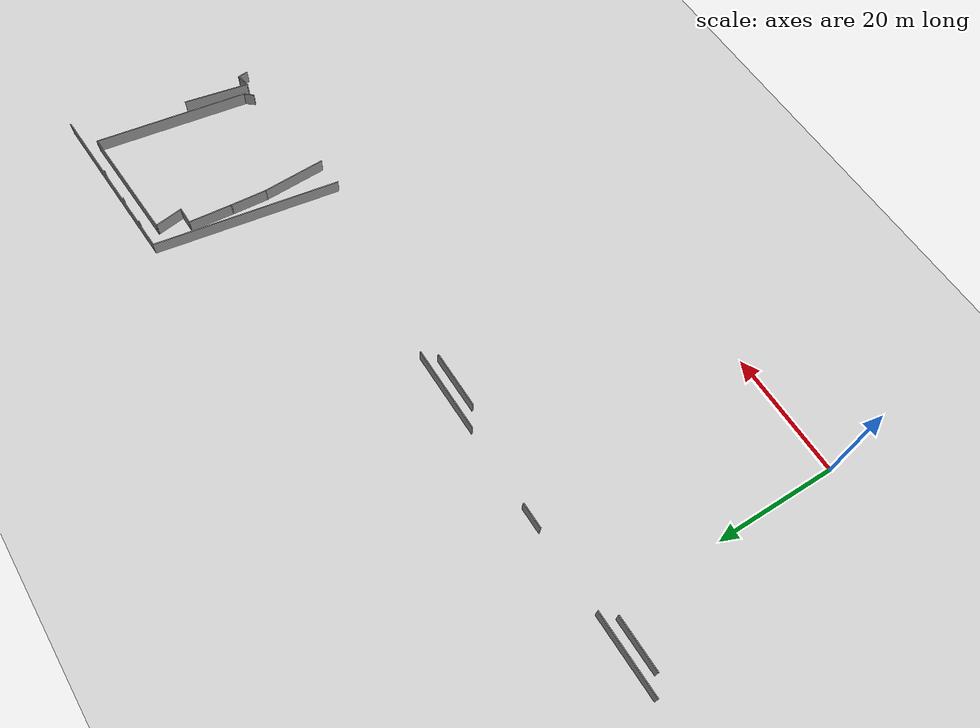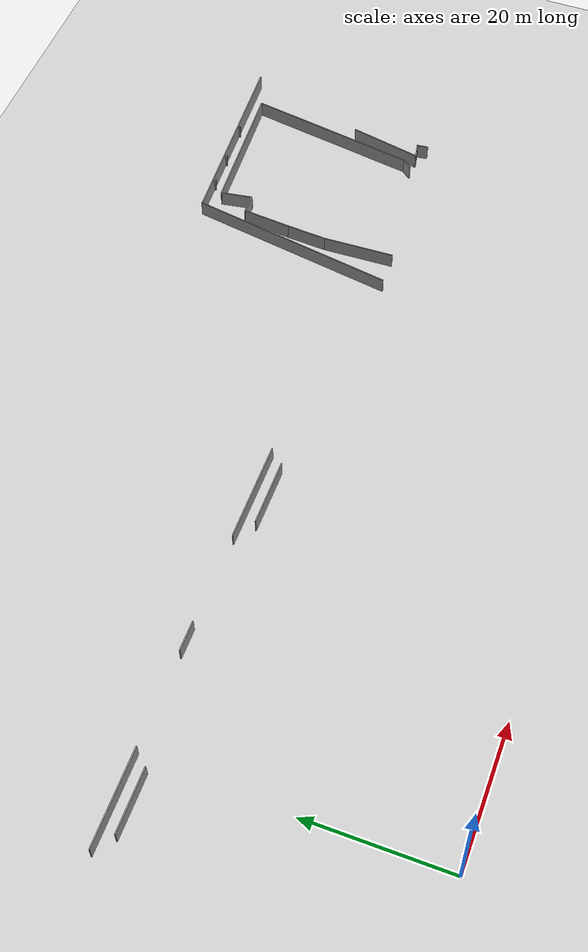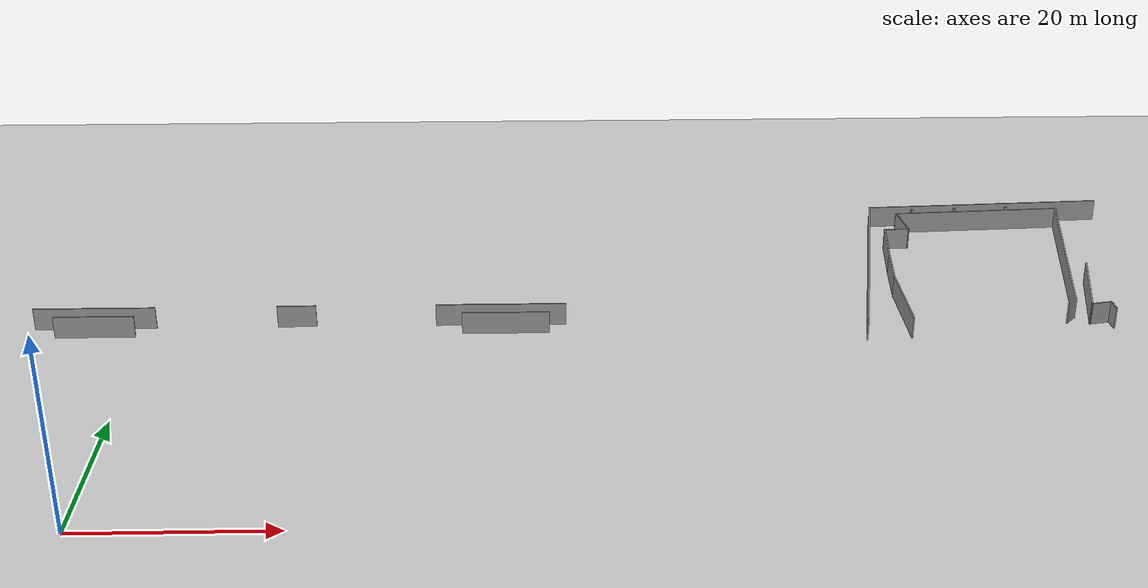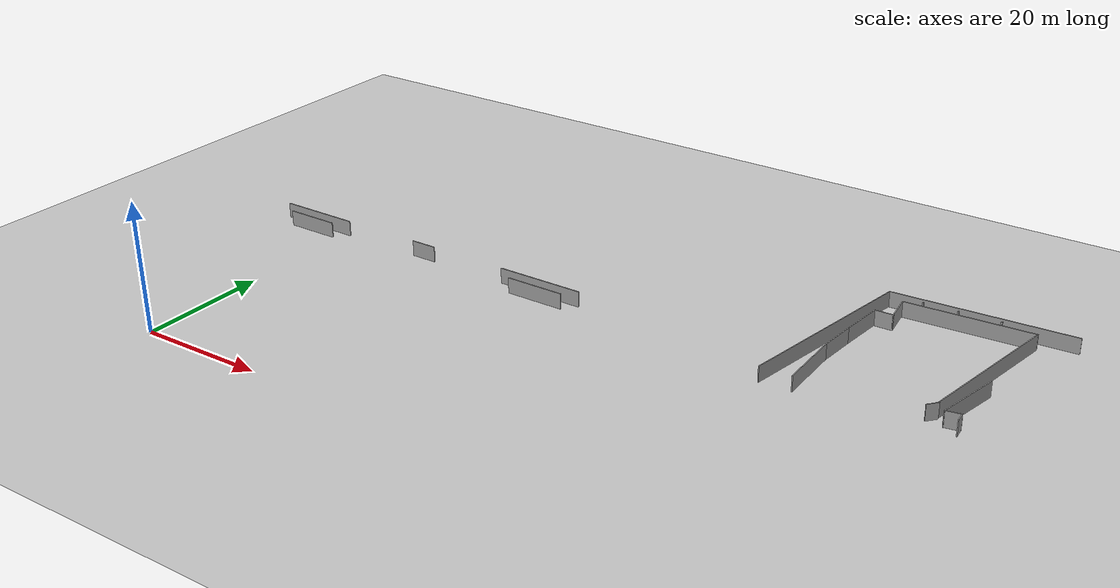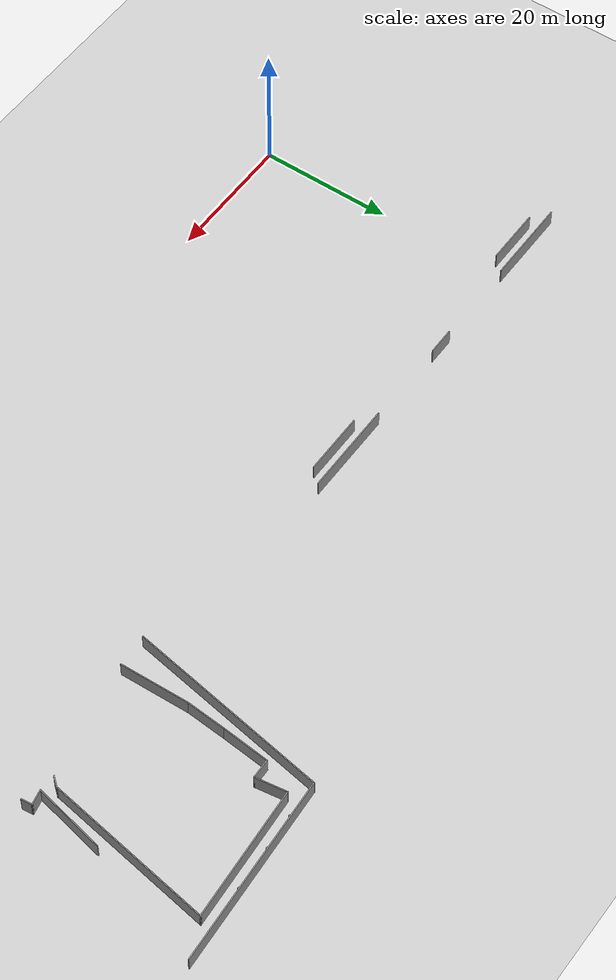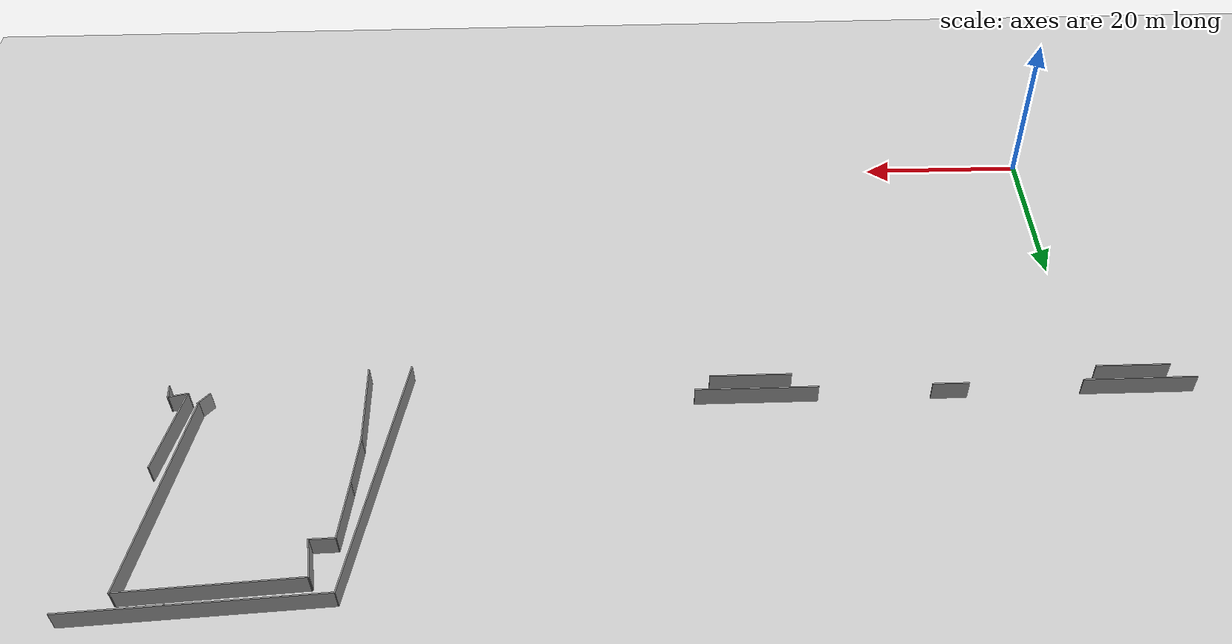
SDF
<sdf version="1.6">
 <world name="default">
  <model name="ground_plane">
   <static>1</static>
   <link name="link">
    <collision name="collision">
     <geometry><plane><normal>0 0 1</normal><size>100 100</size></plane></geometry>
     <surface><friction><ode><mu>100</mu><mu2>50</mu2></ode></friction></surface>
    </collision>
    <visual name="visual">
     <cast_shadows>0</cast_shadows>
     <geometry><plane><normal>0 0 1</normal><size>100 100</size></plane></geometry>
     <material>
      <script><uri>file://media/materials/scripts/gazebo.material</uri><name>Gazebo/Grey</name></script>
     </material>
    </visual>
   </link>
  </model>
  <model name="CMU">
   <pose>62.2844 43.535 0 0 -0 0</pose>
   <link name="Wall_128">
    <collision name="Wall_128_Collision">
     <geometry><box><size>1.70985 0.15 2.5</size></box></geometry>
     <pose>0 0 1.25 0 -0 0</pose>
    </collision>
    <visual name="Wall_128_Visual">
     <pose>0 0 1.25 0 -0 0</pose>
     <geometry><box><size>1.70985 0.15 2.5</size></box></geometry>
     <material>
      <script><uri>file://media/materials/scripts/gazebo.material</uri><name>Gazebo/Grey</name></script>
      <ambient>1 1 1 1</ambient>
     </material>
    </visual>
    <pose>43.1701 -4.77822 0 0 -0 1.67388</pose>
   </link>
   <link name="Wall_129">
    <collision name="Wall_129_Collision">
     <geometry><box><size>2.38497 0.15 2.5</size></box></geometry>
     <pose>0 0 1.25 0 -0 0</pose>
    </collision>
    <visual name="Wall_129_Visual">
     <pose>0 0 1.25 0 -0 0</pose>
     <geometry><box><size>2.38497 0.15 2.5</size></box></geometry>
     <material>
      <script><uri>file://media/materials/scripts/gazebo.material</uri><name>Gazebo/Grey</name></script>
      <ambient>1 1 1 1</ambient>
     </material>
    </visual>
    <pose>41.993 -4.21645 0 0 0 -2.94889</pose>
   </link>
   <link name="Wall_130">
    <collision name="Wall_130_Collision">
     <geometry><box><size>10.7896 0.15 2.5</size></box></geometry>
     <pose>0 0 1.25 0 -0 0</pose>
    </collision>
    <visual name="Wall_130_Visual">
     <pose>0 0 1.25 0 -0 0</pose>
     <geometry><box><size>10.7896 0.15 2.5</size></box></geometry>
     <material>
      <script><uri>file://media/materials/scripts/gazebo.material</uri><name>Gazebo/Grey</name></script>
      <ambient>1 1 1 1</ambient>
     </material>
    </visual>
    <pose>41.9395 0.786037 0 0 -0 1.3734</pose>
   </link>
   <link name="Wall_14">
    <collision name="Wall_14_Collision">
     <geometry><box><size>13.25 0.15 2.5</size></box></geometry>
     <pose>0 0 1.25 0 -0 0</pose>
    </collision>
    <visual name="Wall_14_Visual">
     <pose>0 0 1.25 0 -0 0</pose>
     <geometry><box><size>13.25 0.15 2.5</size></box></geometry>
     <material>
      <script><uri>file://media/materials/scripts/gazebo.material</uri><name>Gazebo/Grey</name></script>
      <ambient>1 1 1 1</ambient>
     </material>
    </visual>
    <pose>-68.0948 -3.11757 0 0 -0 0</pose>
   </link>
   <link name="Wall_18">
    <collision name="Wall_18_Collision">
     <geometry><box><size>4.25 0.15 2.5</size></box></geometry>
     <pose>0 0 1.25 0 -0 0</pose>
    </collision>
    <visual name="Wall_18_Visual">
     <pose>0 0 1.25 0 -0 0</pose>
     <geometry><box><size>4.25 0.15 2.5</size></box></geometry>
     <material>
      <script><uri>file://media/materials/scripts/gazebo.material</uri><name>Gazebo/Grey</name></script>
      <ambient>1 1 1 1</ambient>
     </material>
    </visual>
    <pose>-46.1448 -3.03078 0 0 -0 0</pose>
   </link>
   <link name="Wall_202">
    <collision name="Wall_202_Collision">
     <geometry><box><size>28.1424 0.15 2.5</size></box></geometry>
     <pose>0 0 1.25 0 -0 0</pose>
    </collision>
    <visual name="Wall_202_Visual">
     <pose>0 0 1.25 0 -0 0</pose>
     <geometry><box><size>28.1424 0.15 2.5</size></box></geometry>
     <material>
      <script><uri>file://media/materials/scripts/gazebo.material</uri><name>Gazebo/Grey</name></script>
      <ambient>1 1 1 1</ambient>
     </material>
    </visual>
    <pose>34.7286 23.3011 0 0 0 -3.08595</pose>
   </link>
   <link name="Wall_203">
    <collision name="Wall_203_Collision">
     <geometry><box><size>30.6473 0.15 2.5</size></box></geometry>
     <pose>0 0 1.25 0 -0 0</pose>
    </collision>
    <visual name="Wall_203_Visual">
     <pose>0 0 1.25 0 -0 0</pose>
     <geometry><box><size>30.6473 0.15 2.5</size></box></geometry>
     <material>
      <script><uri>file://media/materials/scripts/gazebo.material</uri><name>Gazebo/Grey</name></script>
      <ambient>1 1 1 1</ambient>
     </material>
    </visual>
    <pose>18.2604 7.46783 0 0 0 -1.73036</pose>
   </link>
   <link name="Wall_213">
    <collision name="Wall_213_Collision">
     <geometry><box><size>1.90757 0.15 2.5</size></box></geometry>
     <pose>0 0 1.25 0 -0 0</pose>
    </collision>
    <visual name="Wall_213_Visual">
     <pose>0 0 1.25 0 -0 0</pose>
     <geometry><box><size>1.90757 0.15 2.5</size></box></geometry>
     <material>
      <script><uri>file://media/materials/scripts/gazebo.material</uri><name>Gazebo/Grey</name></script>
      <ambient>1 1 1 1</ambient>
     </material>
    </visual>
    <pose>38.9386 -3.62199 0 0 -0 0.870903</pose>
   </link>
   <link name="Wall_214">
    <collision name="Wall_214_Collision">
     <geometry><box><size>25.2189 0.15 2.5</size></box></geometry>
     <pose>0 0 1.25 0 -0 0</pose>
    </collision>
    <visual name="Wall_214_Visual">
     <pose>0 0 1.25 0 -0 0</pose>
     <geometry><box><size>25.2189 0.15 2.5</size></box></geometry>
     <material>
      <script><uri>file://media/materials/scripts/gazebo.material</uri><name>Gazebo/Grey</name></script>
      <ambient>1 1 1 1</ambient>
     </material>
    </visual>
    <pose>41.3798 9.43269 0 0 -0 1.41493</pose>
   </link>
   <link name="Wall_216">
    <collision name="Wall_216_Collision">
     <geometry><box><size>19.9278 0.15 2.5</size></box></geometry>
     <pose>0 0 1.25 0 -0 0</pose>
    </collision>
    <visual name="Wall_216_Visual">
     <pose>0 0 1.25 0 -0 0</pose>
     <geometry><box><size>19.9278 0.15 2.5</size></box></geometry>
     <material>
      <script><uri>file://media/materials/scripts/gazebo.material</uri><name>Gazebo/Grey</name></script>
      <ambient>1 1 1 1</ambient>
     </material>
    </visual>
    <pose>33.455 21.2137 0 0 0 -3.08074</pose>
   </link>
   <link name="Wall_217">
    <collision name="Wall_217_Collision">
     <geometry><box><size>4.80332 0.15 2.5</size></box></geometry>
     <pose>0 0 1.25 0 -0 0</pose>
    </collision>
    <visual name="Wall_217_Visual">
     <pose>0 0 1.25 0 -0 0</pose>
     <geometry><box><size>4.80332 0.15 2.5</size></box></geometry>
     <material>
      <script><uri>file://media/materials/scripts/gazebo.material</uri><name>Gazebo/Grey</name></script>
      <ambient>1 1 1 1</ambient>
     </material>
    </visual>
    <pose>23.9382 18.3127 0 0 0 -1.41815</pose>
   </link>
   <link name="Wall_218">
    <collision name="Wall_218_Collision">
     <geometry><box><size>2.98028 0.15 2.5</size></box></geometry>
     <pose>0 0 1.25 0 -0 0</pose>
    </collision>
    <visual name="Wall_218_Visual">
     <pose>0 0 1.25 0 -0 0</pose>
     <geometry><box><size>2.98028 0.15 2.5</size></box></geometry>
     <material>
      <script><uri>file://media/materials/scripts/gazebo.material</uri><name>Gazebo/Grey</name></script>
      <ambient>1 1 1 1</ambient>
     </material>
    </visual>
    <pose>22.8768 15.9777 0 0 0 -3.1166</pose>
   </link>
   <link name="Wall_219">
    <collision name="Wall_219_Collision">
     <geometry><box><size>7.2543 0.15 2.5</size></box></geometry>
     <pose>0 0 1.25 0 -0 0</pose>
    </collision>
    <visual name="Wall_219_Visual">
     <pose>0 0 1.25 0 -0 0</pose>
     <geometry><box><size>7.2543 0.15 2.5</size></box></geometry>
     <material>
      <script><uri>file://media/materials/scripts/gazebo.material</uri><name>Gazebo/Grey</name></script>
      <ambient>1 1 1 1</ambient>
     </material>
    </visual>
    <pose>21.1432 12.4045 0 0 0 -1.66056</pose>
   </link>
   <link name="Wall_220">
    <collision name="Wall_220_Collision">
     <geometry><box><size>6.03816 0.15 2.5</size></box></geometry>
     <pose>0 0 1.25 0 -0 0</pose>
    </collision>
    <visual name="Wall_220_Visual">
     <pose>0 0 1.25 0 -0 0</pose>
     <geometry><box><size>6.03816 0.15 2.5</size></box></geometry>
     <material>
      <script><uri>file://media/materials/scripts/gazebo.material</uri><name>Gazebo/Grey</name></script>
      <ambient>1 1 1 1</ambient>
     </material>
    </visual>
    <pose>20.6126 5.93022 0 0 0 -1.64296</pose>
   </link>
   <link name="Wall_221">
    <collision name="Wall_221_Collision">
     <geometry><box><size>10.4159 0.15 2.5</size></box></geometry>
     <pose>0 0 1.25 0 -0 0</pose>
    </collision>
    <visual name="Wall_221_Visual">
     <pose>0 0 1.25 0 -0 0</pose>
     <geometry><box><size>10.4159 0.15 2.5</size></box></geometry>
     <material>
      <script><uri>file://media/materials/scripts/gazebo.material</uri><name>Gazebo/Grey</name></script>
      <ambient>1 1 1 1</ambient>
     </material>
    </visual>
    <pose>20.5772 -2.20684 0 0 0 -1.53633</pose>
   </link>
   <link name="Wall_24">
    <collision name="Wall_24_Collision">
     <geometry><box><size>14.25 0.15 2.5</size></box></geometry>
     <pose>0 0 1.25 0 -0 0</pose>
    </collision>
    <visual name="Wall_24_Visual">
     <pose>0 0 1.25 0 -0 0</pose>
     <geometry><box><size>14.25 0.15 2.5</size></box></geometry>
     <material>
      <script><uri>file://media/materials/scripts/gazebo.material</uri><name>Gazebo/Grey</name></script>
      <ambient>1 1 1 1</ambient>
     </material>
    </visual>
    <pose>-23.83 -3.07311 0 0 -0 0</pose>
   </link>
   <link name="Wall_36">
    <collision name="Wall_36_Collision">
     <geometry><box><size>9.5 0.15 2.5</size></box></geometry>
     <pose>0 0 1.25 0 -0 0</pose>
    </collision>
    <visual name="Wall_36_Visual">
     <pose>0 0 1.25 0 -0 0</pose>
     <geometry><box><size>9.5 0.15 2.5</size></box></geometry>
     <material>
      <script><uri>file://media/materials/scripts/gazebo.material</uri><name>Gazebo/Grey</name></script>
      <ambient>1 1 1 1</ambient>
     </material>
    </visual>
    <pose>-23.2682 -5.0798 0 0 -0 0</pose>
   </link>
   <link name="Wall_62">
    <collision name="Wall_62_Collision">
     <geometry><box><size>8.70437 0.15 2.5</size></box></geometry>
     <pose>0 0 1.25 0 -0 0</pose>
    </collision>
    <visual name="Wall_62_Visual">
     <pose>0 0 1.25 0 -0 0</pose>
     <geometry><box><size>8.70437 0.15 2.5</size></box></geometry>
     <material>
      <script><uri>file://media/materials/scripts/gazebo.material</uri><name>Gazebo/Grey</name></script>
      <ambient>1 1 1 1</ambient>
     </material>
    </visual>
    <pose>-67.7521 -5.1311 0 0 -0 0</pose>
   </link>
   <static>1</static>
  </model>
  <model name="unit_box_0_clone_clone_22">
   <pose>99.8641 66.7913 1.07512 5e-06 -1e-06 0.004623</pose>
   <link name="link">
    <inertial>
     <mass>1</mass>
     <inertia>
      <ixx>0.166667</ixx>
      <ixy>0</ixy>
      <ixz>0</ixz>
      <iyy>0.166667</iyy>
      <iyz>0</iyz>
      <izz>0.166667</izz>
     </inertia>
    </inertial>
    <collision name="collision"><geometry><box><size>0.230557 0.245067 2.15023</size></box></geometry></collision>
    <visual name="visual">
     <geometry><box><size>0.230557 0.245067 2.15023</size></box></geometry>
     <material>
      <script><name>Gazebo/Grey</name><uri>file://media/materials/scripts/gazebo.material</uri></script>
     </material>
    </visual>
   </link>
  </model>
  <model name="unit_box_0_clone_clone_23">
   <pose>93.5019 66.4407 1.07512 -1e-06 1e-05 0.039268</pose>
   <link name="link">
    <inertial>
     <mass>1</mass>
     <inertia>
      <ixx>0.166667</ixx>
      <ixy>0</ixy>
      <ixz>0</ixz>
      <iyy>0.166667</iyy>
      <iyz>0</iyz>
      <izz>0.166667</izz>
     </inertia>
    </inertial>
    <collision name="collision"><geometry><box><size>0.230557 0.245067 2.15023</size></box></geometry></collision>
    <visual name="visual">
     <geometry><box><size>0.230557 0.245067 2.15023</size></box></geometry>
     <material>
      <script><name>Gazebo/Grey</name><uri>file://media/materials/scripts/gazebo.material</uri></script>
     </material>
    </visual>
   </link>
  </model>
  <model name="unit_box_0_clone_clone_24">
   <pose>88.2164 66.1445 1.07512 -3e-06 -0 0.023095</pose>
   <link name="link">
    <inertial>
     <mass>1</mass>
     <inertia>
      <ixx>0.166667</ixx>
      <ixy>0</ixy>
      <ixz>0</ixz>
      <iyy>0.166667</iyy>
      <iyz>0</iyz>
      <izz>0.166667</izz>
     </inertia>
    </inertial>
    <collision name="collision"><geometry><box><size>0.230557 0.245067 2.15023</size></box></geometry></collision>
    <visual name="visual">
     <geometry><box><size>0.230557 0.245067 2.15023</size></box></geometry>
     <material>
      <script><name>Gazebo/Grey</name><uri>file://media/materials/scripts/gazebo.material</uri></script>
     </material>
    </visual>
   </link>
  </model>
 </world>
</sdf>
